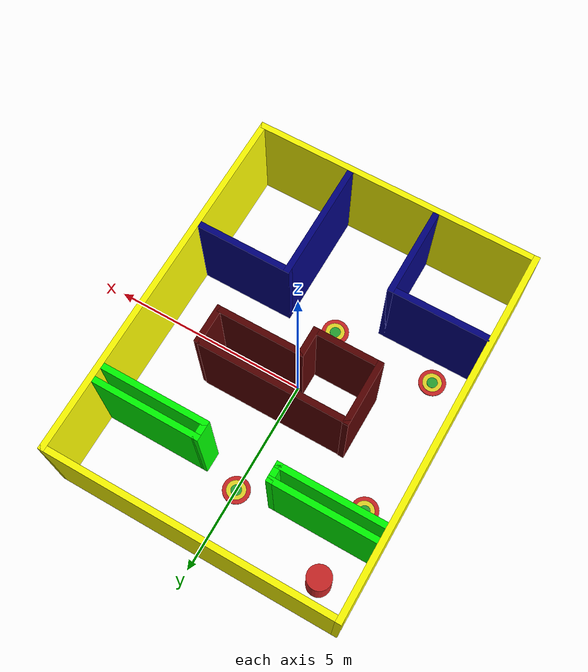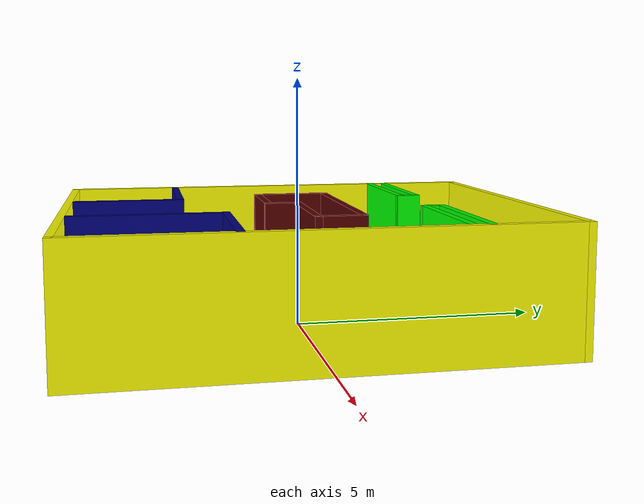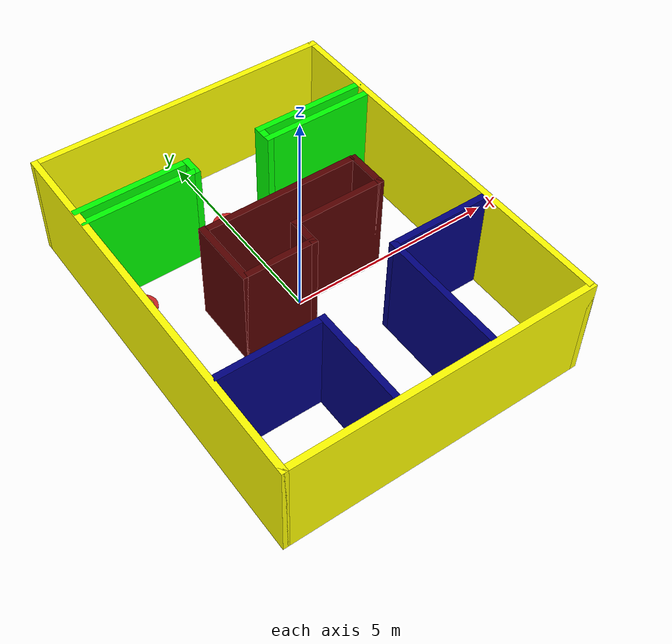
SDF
<?xml version='1.0'?>
<sdf version='1.6'>
  <model name='ColorfulRoom'>
    <link name='Wall_0'>
      <pose frame=''>-3.55 0 0 0 0 -1.5708</pose>
      <self_collide>0</self_collide>
      <enable_wind>0</enable_wind>
      <kinematic>0</kinematic>
      <visual name='Wall_0_Visual'>
        <pose frame=''>0 0 1.25 0 -0 0</pose>
        <geometry>
          <box>
            <size>9.25 0.15 2.5</size>
          </box>
        </geometry>
        <material>
          <script>
            <uri>file://media/materials/scripts/gazebo.material</uri>
            <name>Gazebo/Grey</name>
          </script>
          <ambient>1 1 0 1</ambient>
        </material>
        <meta>
          <layer>0</layer>
        </meta>
        <transparency>0</transparency>
        <cast_shadows>1</cast_shadows>
      </visual>
      <collision name='Wall_0_Collision'>
        <laser_retro>0</laser_retro>
        <max_contacts>10</max_contacts>
        <pose frame=''>0 0 1.25 0 -0 0</pose>
        <geometry>
          <box>
            <size>9.25 0.15 2.5</size>
          </box>
        </geometry>
        <surface>
          <friction>
            <ode>
              <mu>1</mu>
              <mu2>1</mu2>
              <fdir1>0 0 0</fdir1>
              <slip1>0</slip1>
              <slip2>0</slip2>
            </ode>
            <torsional>
              <coefficient>1</coefficient>
              <patch_radius>0</patch_radius>
              <surface_radius>0</surface_radius>
              <use_patch_radius>1</use_patch_radius>
              <ode>
                <slip>0</slip>
              </ode>
            </torsional>
          </friction>
          <bounce>
            <restitution_coefficient>0</restitution_coefficient>
            <threshold>1e+06</threshold>
          </bounce>
          <contact>
            <collide_without_contact>0</collide_without_contact>
            <collide_without_contact_bitmask>1</collide_without_contact_bitmask>
            <collide_bitmask>1</collide_bitmask>
            <ode>
              <soft_cfm>0</soft_cfm>
              <soft_erp>0.2</soft_erp>
              <kp>1e+13</kp>
              <kd>1</kd>
              <max_vel>0.01</max_vel>
              <min_depth>0</min_depth>
            </ode>
            <bullet>
              <split_impulse>1</split_impulse>
              <split_impulse_penetration_threshold>-0.01</split_impulse_penetration_threshold>
              <soft_cfm>0</soft_cfm>
              <soft_erp>0.2</soft_erp>
              <kp>1e+13</kp>
              <kd>1</kd>
            </bullet>
          </contact>
        </surface>
      </collision>
    </link>
    <link name='Wall_11'>
      <pose frame=''>2.33537 -1.55762 0 0 -0 3.14159</pose>
      <self_collide>0</self_collide>
      <enable_wind>0</enable_wind>
      <kinematic>0</kinematic>
      <visual name='Wall_11_Visual'>
        <pose frame=''>0 0 1.25 0 -0 0</pose>
        <geometry>
          <box>
            <size>2.5 0.15 2.5</size>
          </box>
        </geometry>
        <material>
          <script>
            <uri>file://media/materials/scripts/gazebo.material</uri>
            <name>Gazebo/Grey</name>
          </script>
          <ambient>0 0 0.498039 1</ambient>
        </material>
        <meta>
          <layer>0</layer>
        </meta>
        <transparency>0</transparency>
        <cast_shadows>1</cast_shadows>
      </visual>
      <collision name='Wall_11_Collision'>
        <laser_retro>0</laser_retro>
        <max_contacts>10</max_contacts>
        <pose frame=''>0 0 1.25 0 -0 0</pose>
        <geometry>
          <box>
            <size>2.5 0.15 2.5</size>
          </box>
        </geometry>
        <surface>
          <friction>
            <ode>
              <mu>1</mu>
              <mu2>1</mu2>
              <fdir1>0 0 0</fdir1>
              <slip1>0</slip1>
              <slip2>0</slip2>
            </ode>
            <torsional>
              <coefficient>1</coefficient>
              <patch_radius>0</patch_radius>
              <surface_radius>0</surface_radius>
              <use_patch_radius>1</use_patch_radius>
              <ode>
                <slip>0</slip>
              </ode>
            </torsional>
          </friction>
          <bounce>
            <restitution_coefficient>0</restitution_coefficient>
            <threshold>1e+06</threshold>
          </bounce>
          <contact>
            <collide_without_contact>0</collide_without_contact>
            <collide_without_contact_bitmask>1</collide_without_contact_bitmask>
            <collide_bitmask>1</collide_bitmask>
            <ode>
              <soft_cfm>0</soft_cfm>
              <soft_erp>0.2</soft_erp>
              <kp>1e+13</kp>
              <kd>1</kd>
              <max_vel>0.01</max_vel>
              <min_depth>0</min_depth>
            </ode>
            <bullet>
              <split_impulse>1</split_impulse>
              <split_impulse_penetration_threshold>-0.01</split_impulse_penetration_threshold>
              <soft_cfm>0</soft_cfm>
              <soft_erp>0.2</soft_erp>
              <kp>1e+13</kp>
              <kd>1</kd>
            </bullet>
          </contact>
        </surface>
      </collision>
    </link>
    <link name='Wall_12'>
      <pose frame=''>1.16037 -2.98392 0 0 0 -1.5708</pose>
      <self_collide>0</self_collide>
      <enable_wind>0</enable_wind>
      <kinematic>0</kinematic>
      <visual name='Wall_12_Visual'>
        <pose frame=''>0 0 1.25 0 -0 0</pose>
        <geometry>
          <box>
            <size>3.0026 0.15 2.5</size>
          </box>
        </geometry>
        <material>
          <script>
            <uri>file://media/materials/scripts/gazebo.material</uri>
            <name>Gazebo/Grey</name>
          </script>
          <ambient>0 0 0.498039 1</ambient>
        </material>
        <meta>
          <layer>0</layer>
        </meta>
        <transparency>0</transparency>
        <cast_shadows>1</cast_shadows>
      </visual>
      <collision name='Wall_12_Collision'>
        <laser_retro>0</laser_retro>
        <max_contacts>10</max_contacts>
        <pose frame=''>0 0 1.25 0 -0 0</pose>
        <geometry>
          <box>
            <size>3.0026 0.15 2.5</size>
          </box>
        </geometry>
        <surface>
          <friction>
            <ode>
              <mu>1</mu>
              <mu2>1</mu2>
              <fdir1>0 0 0</fdir1>
              <slip1>0</slip1>
              <slip2>0</slip2>
            </ode>
            <torsional>
              <coefficient>1</coefficient>
              <patch_radius>0</patch_radius>
              <surface_radius>0</surface_radius>
              <use_patch_radius>1</use_patch_radius>
              <ode>
                <slip>0</slip>
              </ode>
            </torsional>
          </friction>
          <bounce>
            <restitution_coefficient>0</restitution_coefficient>
            <threshold>1e+06</threshold>
          </bounce>
          <contact>
            <collide_without_contact>0</collide_without_contact>
            <collide_without_contact_bitmask>1</collide_without_contact_bitmask>
            <collide_bitmask>1</collide_bitmask>
            <ode>
              <soft_cfm>0</soft_cfm>
              <soft_erp>0.2</soft_erp>
              <kp>1e+13</kp>
              <kd>1</kd>
              <max_vel>0.01</max_vel>
              <min_depth>0</min_depth>
            </ode>
            <bullet>
              <split_impulse>1</split_impulse>
              <split_impulse_penetration_threshold>-0.01</split_impulse_penetration_threshold>
              <soft_cfm>0</soft_cfm>
              <soft_erp>0.2</soft_erp>
              <kp>1e+13</kp>
              <kd>1</kd>
            </bullet>
          </contact>
        </surface>
      </collision>
    </link>
    <link name='Wall_14'>
      <pose frame=''>-1.69948 0.162196 0 0 0 -1.5708</pose>
      <self_collide>0</self_collide>
      <enable_wind>0</enable_wind>
      <kinematic>0</kinematic>
      <gravity>1</gravity>
      <inertial>
        <mass>1</mass>
        <pose frame=''>0 0 0 0 -0 0</pose>
        <inertia>
          <ixx>1</ixx>
          <ixy>0</ixy>
          <ixz>0</ixz>
          <iyy>1</iyy>
          <iyz>0</iyz>
          <izz>1</izz>
        </inertia>
      </inertial>
      <visual name='Wall_14_Visual'>
        <pose frame=''>0 0 1.25 0 -0 0</pose>
        <geometry>
          <box>
            <size>1.63225 0.15 2.5</size>
          </box>
        </geometry>
        <material>
          <script>
            <uri>file://media/materials/scripts/gazebo.material</uri>
            <name>Gazebo/Grey</name>
          </script>
          <ambient>0.333 0 0 1</ambient>
          <shader type='vertex'>
            <normal_map>__default__</normal_map>
          </shader>
        </material>
        <meta>
          <layer>0</layer>
        </meta>
        <transparency>0</transparency>
        <cast_shadows>1</cast_shadows>
      </visual>
      <collision name='Wall_14_Collision'>
        <laser_retro>0</laser_retro>
        <max_contacts>10</max_contacts>
        <pose frame=''>0 0 1.25 0 -0 0</pose>
        <geometry>
          <box>
            <size>1.63225 0.15 2.5</size>
          </box>
        </geometry>
        <surface>
          <friction>
            <ode>
              <mu>1</mu>
              <mu2>1</mu2>
              <fdir1>0 0 0</fdir1>
              <slip1>0</slip1>
              <slip2>0</slip2>
            </ode>
            <torsional>
              <coefficient>1</coefficient>
              <patch_radius>0</patch_radius>
              <surface_radius>0</surface_radius>
              <use_patch_radius>1</use_patch_radius>
              <ode>
                <slip>0</slip>
              </ode>
            </torsional>
          </friction>
          <bounce>
            <restitution_coefficient>0</restitution_coefficient>
            <threshold>1e+06</threshold>
          </bounce>
          <contact>
            <collide_without_contact>0</collide_without_contact>
            <collide_without_contact_bitmask>1</collide_without_contact_bitmask>
            <collide_bitmask>1</collide_bitmask>
            <ode>
              <soft_cfm>0</soft_cfm>
              <soft_erp>0.2</soft_erp>
              <kp>1e+13</kp>
              <kd>1</kd>
              <max_vel>0.01</max_vel>
              <min_depth>0</min_depth>
            </ode>
            <bullet>
              <split_impulse>1</split_impulse>
              <split_impulse_penetration_threshold>-0.01</split_impulse_penetration_threshold>
              <soft_cfm>0</soft_cfm>
              <soft_erp>0.2</soft_erp>
              <kp>1e+13</kp>
              <kd>1</kd>
            </bullet>
          </contact>
        </surface>
      </collision>
    </link>
    <link name='Wall_17'>
      <pose frame=''>-0.899476 -0.578929 0 0 -0 0</pose>
      <self_collide>0</self_collide>
      <enable_wind>0</enable_wind>
      <kinematic>0</kinematic>
      <gravity>1</gravity>
      <inertial>
        <mass>1</mass>
        <pose frame=''>0 0 0 0 -0 0</pose>
        <inertia>
          <ixx>1</ixx>
          <ixy>0</ixy>
          <ixz>0</ixz>
          <iyy>1</iyy>
          <iyz>0</iyz>
          <izz>1</izz>
        </inertia>
      </inertial>
      <visual name='Wall_17_Visual'>
        <pose frame=''>0 0 1.25 0 -0 0</pose>
        <geometry>
          <box>
            <size>1.75 0.15 2.5</size>
          </box>
        </geometry>
        <material>
          <script>
            <uri>file://media/materials/scripts/gazebo.material</uri>
            <name>Gazebo/Grey</name>
          </script>
          <ambient>0.333 0 0 1</ambient>
          <shader type='vertex'>
            <normal_map>__default__</normal_map>
          </shader>
          <diffuse>0.7 0.7 0.7 1</diffuse>
          <specular>0.01 0.01 0.01 1</specular>
          <emissive>0 0 0 1</emissive>
        </material>
        <meta>
          <layer>0</layer>
        </meta>
        <transparency>0</transparency>
        <cast_shadows>1</cast_shadows>
      </visual>
      <collision name='Wall_17_Collision'>
        <laser_retro>0</laser_retro>
        <max_contacts>10</max_contacts>
        <pose frame=''>0 0 1.25 0 -0 0</pose>
        <geometry>
          <box>
            <size>1.75 0.15 2.5</size>
          </box>
        </geometry>
        <surface>
          <friction>
            <ode>
              <mu>1</mu>
              <mu2>1</mu2>
              <fdir1>0 0 0</fdir1>
              <slip1>0</slip1>
              <slip2>0</slip2>
            </ode>
            <torsional>
              <coefficient>1</coefficient>
              <patch_radius>0</patch_radius>
              <surface_radius>0</surface_radius>
              <use_patch_radius>1</use_patch_radius>
              <ode>
                <slip>0</slip>
              </ode>
            </torsional>
          </friction>
          <bounce>
            <restitution_coefficient>0</restitution_coefficient>
            <threshold>1e+06</threshold>
          </bounce>
          <contact>
            <collide_without_contact>0</collide_without_contact>
            <collide_without_contact_bitmask>1</collide_without_contact_bitmask>
            <collide_bitmask>1</collide_bitmask>
            <ode>
              <soft_cfm>0</soft_cfm>
              <soft_erp>0.2</soft_erp>
              <kp>1e+13</kp>
              <kd>1</kd>
              <max_vel>0.01</max_vel>
              <min_depth>0</min_depth>
            </ode>
            <bullet>
              <split_impulse>1</split_impulse>
              <split_impulse_penetration_threshold>-0.01</split_impulse_penetration_threshold>
              <soft_cfm>0</soft_cfm>
              <soft_erp>0.2</soft_erp>
              <kp>1e+13</kp>
              <kd>1</kd>
            </bullet>
          </contact>
        </surface>
      </collision>
    </link>
    <link name='Wall_18'>
      <pose frame=''>-0.099476 -0.278929 0 0 -0 1.5708</pose>
      <self_collide>0</self_collide>
      <enable_wind>0</enable_wind>
      <kinematic>0</kinematic>
      <gravity>1</gravity>
      <inertial>
        <mass>1</mass>
        <pose frame=''>0 0 0 0 -0 0</pose>
        <inertia>
          <ixx>1</ixx>
          <ixy>0</ixy>
          <ixz>0</ixz>
          <iyy>1</iyy>
          <iyz>0</iyz>
          <izz>1</izz>
        </inertia>
      </inertial>
      <visual name='Wall_18_Visual'>
        <pose frame=''>0 0 1.25 0 -0 0</pose>
        <geometry>
          <box>
            <size>0.75 0.15 2.5</size>
          </box>
        </geometry>
        <material>
          <script>
            <uri>file://media/materials/scripts/gazebo.material</uri>
            <name>Gazebo/Grey</name>
          </script>
          <ambient>0.333 0 0 1</ambient>
          <shader type='vertex'>
            <normal_map>__default__</normal_map>
          </shader>
          <diffuse>0.7 0.7 0.7 1</diffuse>
          <specular>0.01 0.01 0.01 1</specular>
          <emissive>0 0 0 1</emissive>
        </material>
        <meta>
          <layer>0</layer>
        </meta>
        <transparency>0</transparency>
        <cast_shadows>1</cast_shadows>
      </visual>
      <collision name='Wall_18_Collision'>
        <laser_retro>0</laser_retro>
        <max_contacts>10</max_contacts>
        <pose frame=''>0 0 1.25 0 -0 0</pose>
        <geometry>
          <box>
            <size>0.75 0.15 2.5</size>
          </box>
        </geometry>
        <surface>
          <friction>
            <ode>
              <mu>1</mu>
              <mu2>1</mu2>
              <fdir1>0 0 0</fdir1>
              <slip1>0</slip1>
              <slip2>0</slip2>
            </ode>
            <torsional>
              <coefficient>1</coefficient>
              <patch_radius>0</patch_radius>
              <surface_radius>0</surface_radius>
              <use_patch_radius>1</use_patch_radius>
              <ode>
                <slip>0</slip>
              </ode>
            </torsional>
          </friction>
          <bounce>
            <restitution_coefficient>0</restitution_coefficient>
            <threshold>1e+06</threshold>
          </bounce>
          <contact>
            <collide_without_contact>0</collide_without_contact>
            <collide_without_contact_bitmask>1</collide_without_contact_bitmask>
            <collide_bitmask>1</collide_bitmask>
            <ode>
              <soft_cfm>0</soft_cfm>
              <soft_erp>0.2</soft_erp>
              <kp>1e+13</kp>
              <kd>1</kd>
              <max_vel>0.01</max_vel>
              <min_depth>0</min_depth>
            </ode>
            <bullet>
              <split_impulse>1</split_impulse>
              <split_impulse_penetration_threshold>-0.01</split_impulse_penetration_threshold>
              <soft_cfm>0</soft_cfm>
              <soft_erp>0.2</soft_erp>
              <kp>1e+13</kp>
              <kd>1</kd>
            </bullet>
          </contact>
        </surface>
      </collision>
    </link>
    <link name='Wall_19'>
      <pose frame=''>0.950524 0.02107 0 0 -0 0</pose>
      <self_collide>0</self_collide>
      <enable_wind>0</enable_wind>
      <kinematic>0</kinematic>
      <gravity>1</gravity>
      <inertial>
        <mass>1</mass>
        <pose frame=''>0 0 0 0 -0 0</pose>
        <inertia>
          <ixx>1</ixx>
          <ixy>0</ixy>
          <ixz>0</ixz>
          <iyy>1</iyy>
          <iyz>0</iyz>
          <izz>1</izz>
        </inertia>
      </inertial>
      <visual name='Wall_19_Visual'>
        <pose frame=''>0 0 1.25 0 -0 0</pose>
        <geometry>
          <box>
            <size>2.25 0.15 2.5</size>
          </box>
        </geometry>
        <material>
          <script>
            <uri>file://media/materials/scripts/gazebo.material</uri>
            <name>Gazebo/Grey</name>
          </script>
          <ambient>0.333 0 0 1</ambient>
          <shader type='vertex'>
            <normal_map>__default__</normal_map>
          </shader>
        </material>
        <meta>
          <layer>0</layer>
        </meta>
        <transparency>0</transparency>
        <cast_shadows>1</cast_shadows>
      </visual>
      <collision name='Wall_19_Collision'>
        <laser_retro>0</laser_retro>
        <max_contacts>10</max_contacts>
        <pose frame=''>0 0 1.25 0 -0 0</pose>
        <geometry>
          <box>
            <size>2.25 0.15 2.5</size>
          </box>
        </geometry>
        <surface>
          <friction>
            <ode>
              <mu>1</mu>
              <mu2>1</mu2>
              <fdir1>0 0 0</fdir1>
              <slip1>0</slip1>
              <slip2>0</slip2>
            </ode>
            <torsional>
              <coefficient>1</coefficient>
              <patch_radius>0</patch_radius>
              <surface_radius>0</surface_radius>
              <use_patch_radius>1</use_patch_radius>
              <ode>
                <slip>0</slip>
              </ode>
            </torsional>
          </friction>
          <bounce>
            <restitution_coefficient>0</restitution_coefficient>
            <threshold>1e+06</threshold>
          </bounce>
          <contact>
            <collide_without_contact>0</collide_without_contact>
            <collide_without_contact_bitmask>1</collide_without_contact_bitmask>
            <collide_bitmask>1</collide_bitmask>
            <ode>
              <soft_cfm>0</soft_cfm>
              <soft_erp>0.2</soft_erp>
              <kp>1e+13</kp>
              <kd>1</kd>
              <max_vel>0.01</max_vel>
              <min_depth>0</min_depth>
            </ode>
            <bullet>
              <split_impulse>1</split_impulse>
              <split_impulse_penetration_threshold>-0.01</split_impulse_penetration_threshold>
              <soft_cfm>0</soft_cfm>
              <soft_erp>0.2</soft_erp>
              <kp>1e+13</kp>
              <kd>1</kd>
            </bullet>
          </contact>
        </surface>
      </collision>
    </link>
    <link name='Wall_2'>
      <pose frame=''>0 -4.55 0 0 -0 0</pose>
      <self_collide>0</self_collide>
      <enable_wind>0</enable_wind>
      <kinematic>0</kinematic>
      <visual name='Wall_2_Visual'>
        <pose frame=''>0 0 1.25 0 -0 0</pose>
        <geometry>
          <box>
            <size>7.25 0.15 2.5</size>
          </box>
        </geometry>
        <material>
          <script>
            <uri>file://media/materials/scripts/gazebo.material</uri>
            <name>Gazebo/Grey</name>
          </script>
          <ambient>1 1 0 1</ambient>
        </material>
        <meta>
          <layer>0</layer>
        </meta>
        <transparency>0</transparency>
        <cast_shadows>1</cast_shadows>
      </visual>
      <collision name='Wall_2_Collision'>
        <laser_retro>0</laser_retro>
        <max_contacts>10</max_contacts>
        <pose frame=''>0 0 1.25 0 -0 0</pose>
        <geometry>
          <box>
            <size>7.25 0.15 2.5</size>
          </box>
        </geometry>
        <surface>
          <friction>
            <ode>
              <mu>1</mu>
              <mu2>1</mu2>
              <fdir1>0 0 0</fdir1>
              <slip1>0</slip1>
              <slip2>0</slip2>
            </ode>
            <torsional>
              <coefficient>1</coefficient>
              <patch_radius>0</patch_radius>
              <surface_radius>0</surface_radius>
              <use_patch_radius>1</use_patch_radius>
              <ode>
                <slip>0</slip>
              </ode>
            </torsional>
          </friction>
          <bounce>
            <restitution_coefficient>0</restitution_coefficient>
            <threshold>1e+06</threshold>
          </bounce>
          <contact>
            <collide_without_contact>0</collide_without_contact>
            <collide_without_contact_bitmask>1</collide_without_contact_bitmask>
            <collide_bitmask>1</collide_bitmask>
            <ode>
              <soft_cfm>0</soft_cfm>
              <soft_erp>0.2</soft_erp>
              <kp>1e+13</kp>
              <kd>1</kd>
              <max_vel>0.01</max_vel>
              <min_depth>0</min_depth>
            </ode>
            <bullet>
              <split_impulse>1</split_impulse>
              <split_impulse_penetration_threshold>-0.01</split_impulse_penetration_threshold>
              <soft_cfm>0</soft_cfm>
              <soft_erp>0.2</soft_erp>
              <kp>1e+13</kp>
              <kd>1</kd>
            </bullet>
          </contact>
        </surface>
      </collision>
    </link>
    <link name='Wall_20'>
      <pose frame=''>2.00052 0.446071 0 0 -0 1.5708</pose>
      <self_collide>0</self_collide>
      <enable_wind>0</enable_wind>
      <kinematic>0</kinematic>
      <gravity>1</gravity>
      <inertial>
        <mass>1</mass>
        <pose frame=''>0 0 0 0 -0 0</pose>
        <inertia>
          <ixx>1</ixx>
          <ixy>0</ixy>
          <ixz>0</ixz>
          <iyy>1</iyy>
          <iyz>0</iyz>
          <izz>1</izz>
        </inertia>
      </inertial>
      <visual name='Wall_20_Visual'>
        <pose frame=''>0 0 1.25 0 -0 0</pose>
        <geometry>
          <box>
            <size>1 0.15 2.5</size>
          </box>
        </geometry>
        <material>
          <script>
            <uri>file://media/materials/scripts/gazebo.material</uri>
            <name>Gazebo/Grey</name>
          </script>
          <ambient>0.333 0 0 1</ambient>
          <shader type='vertex'>
            <normal_map>__default__</normal_map>
          </shader>
        </material>
        <meta>
          <layer>0</layer>
        </meta>
        <transparency>0</transparency>
        <cast_shadows>1</cast_shadows>
      </visual>
      <collision name='Wall_20_Collision'>
        <laser_retro>0</laser_retro>
        <max_contacts>10</max_contacts>
        <pose frame=''>0 0 1.25 0 -0 0</pose>
        <geometry>
          <box>
            <size>1 0.15 2.5</size>
          </box>
        </geometry>
        <surface>
          <friction>
            <ode>
              <mu>1</mu>
              <mu2>1</mu2>
              <fdir1>0 0 0</fdir1>
              <slip1>0</slip1>
              <slip2>0</slip2>
            </ode>
            <torsional>
              <coefficient>1</coefficient>
              <patch_radius>0</patch_radius>
              <surface_radius>0</surface_radius>
              <use_patch_radius>1</use_patch_radius>
              <ode>
                <slip>0</slip>
              </ode>
            </torsional>
          </friction>
          <bounce>
            <restitution_coefficient>0</restitution_coefficient>
            <threshold>1e+06</threshold>
          </bounce>
          <contact>
            <collide_without_contact>0</collide_without_contact>
            <collide_without_contact_bitmask>1</collide_without_contact_bitmask>
            <collide_bitmask>1</collide_bitmask>
            <ode>
              <soft_cfm>0</soft_cfm>
              <soft_erp>0.2</soft_erp>
              <kp>1e+13</kp>
              <kd>1</kd>
              <max_vel>0.01</max_vel>
              <min_depth>0</min_depth>
            </ode>
            <bullet>
              <split_impulse>1</split_impulse>
              <split_impulse_penetration_threshold>-0.01</split_impulse_penetration_threshold>
              <soft_cfm>0</soft_cfm>
              <soft_erp>0.2</soft_erp>
              <kp>1e+13</kp>
              <kd>1</kd>
            </bullet>
          </contact>
        </surface>
      </collision>
    </link>
    <link name='Wall_24'>
      <pose frame=''>0.100524 0.890096 0 0 -0 0</pose>
      <self_collide>0</self_collide>
      <enable_wind>0</enable_wind>
      <kinematic>0</kinematic>
      <gravity>1</gravity>
      <inertial>
        <mass>1</mass>
        <pose frame=''>0 0 0 0 -0 0</pose>
        <inertia>
          <ixx>1</ixx>
          <ixy>0</ixy>
          <ixz>0</ixz>
          <iyy>1</iyy>
          <iyz>0</iyz>
          <izz>1</izz>
        </inertia>
      </inertial>
      <visual name='Wall_24_Visual'>
        <pose frame=''>0 0 1.25 0 -0 0</pose>
        <geometry>
          <box>
            <size>3.75 0.15 2.5</size>
          </box>
        </geometry>
        <material>
          <script>
            <uri>file://media/materials/scripts/gazebo.material</uri>
            <name>Gazebo/Grey</name>
          </script>
          <ambient>0.333 0 0 1</ambient>
          <shader type='vertex'>
            <normal_map>__default__</normal_map>
          </shader>
        </material>
        <meta>
          <layer>0</layer>
        </meta>
        <transparency>0</transparency>
        <cast_shadows>1</cast_shadows>
      </visual>
      <collision name='Wall_24_Collision'>
        <laser_retro>0</laser_retro>
        <max_contacts>10</max_contacts>
        <pose frame=''>0 0 1.25 0 -0 0</pose>
        <geometry>
          <box>
            <size>3.75 0.15 2.5</size>
          </box>
        </geometry>
        <surface>
          <friction>
            <ode>
              <mu>1</mu>
              <mu2>1</mu2>
              <fdir1>0 0 0</fdir1>
              <slip1>0</slip1>
              <slip2>0</slip2>
            </ode>
            <torsional>
              <coefficient>1</coefficient>
              <patch_radius>0</patch_radius>
              <surface_radius>0</surface_radius>
              <use_patch_radius>1</use_patch_radius>
              <ode>
                <slip>0</slip>
              </ode>
            </torsional>
          </friction>
          <bounce>
            <restitution_coefficient>0</restitution_coefficient>
            <threshold>1e+06</threshold>
          </bounce>
          <contact>
            <collide_without_contact>0</collide_without_contact>
            <collide_without_contact_bitmask>1</collide_without_contact_bitmask>
            <collide_bitmask>1</collide_bitmask>
            <ode>
              <soft_cfm>0</soft_cfm>
              <soft_erp>0.2</soft_erp>
              <kp>1e+13</kp>
              <kd>1</kd>
              <max_vel>0.01</max_vel>
              <min_depth>0</min_depth>
            </ode>
            <bullet>
              <split_impulse>1</split_impulse>
              <split_impulse_penetration_threshold>-0.01</split_impulse_penetration_threshold>
              <soft_cfm>0</soft_cfm>
              <soft_erp>0.2</soft_erp>
              <kp>1e+13</kp>
              <kd>1</kd>
            </bullet>
          </contact>
        </surface>
      </collision>
    </link>
    <link name='Wall_28'>
      <pose frame=''>-2.22793 2.43638 0 0 -0 0</pose>
      <self_collide>0</self_collide>
      <enable_wind>0</enable_wind>
      <kinematic>0</kinematic>
      <visual name='Wall_28_Visual'>
        <pose frame=''>0 0 1.25 0 -0 0</pose>
        <geometry>
          <box>
            <size>2.75 0.15 2.5</size>
          </box>
        </geometry>
        <material>
          <script>
            <uri>file://media/materials/scripts/gazebo.material</uri>
            <name>Gazebo/Grey</name>
          </script>
          <ambient>0 1 0 1</ambient>
        </material>
        <meta>
          <layer>0</layer>
        </meta>
        <transparency>0</transparency>
        <cast_shadows>1</cast_shadows>
      </visual>
      <collision name='Wall_28_Collision'>
        <laser_retro>0</laser_retro>
        <max_contacts>10</max_contacts>
        <pose frame=''>0 0 1.25 0 -0 0</pose>
        <geometry>
          <box>
            <size>2.75 0.15 2.5</size>
          </box>
        </geometry>
        <surface>
          <friction>
            <ode>
              <mu>1</mu>
              <mu2>1</mu2>
              <fdir1>0 0 0</fdir1>
              <slip1>0</slip1>
              <slip2>0</slip2>
            </ode>
            <torsional>
              <coefficient>1</coefficient>
              <patch_radius>0</patch_radius>
              <surface_radius>0</surface_radius>
              <use_patch_radius>1</use_patch_radius>
              <ode>
                <slip>0</slip>
              </ode>
            </torsional>
          </friction>
          <bounce>
            <restitution_coefficient>0</restitution_coefficient>
            <threshold>1e+06</threshold>
          </bounce>
          <contact>
            <collide_without_contact>0</collide_without_contact>
            <collide_without_contact_bitmask>1</collide_without_contact_bitmask>
            <collide_bitmask>1</collide_bitmask>
            <ode>
              <soft_cfm>0</soft_cfm>
              <soft_erp>0.2</soft_erp>
              <kp>1e+13</kp>
              <kd>1</kd>
              <max_vel>0.01</max_vel>
              <min_depth>0</min_depth>
            </ode>
            <bullet>
              <split_impulse>1</split_impulse>
              <split_impulse_penetration_threshold>-0.01</split_impulse_penetration_threshold>
              <soft_cfm>0</soft_cfm>
              <soft_erp>0.2</soft_erp>
              <kp>1e+13</kp>
              <kd>1</kd>
            </bullet>
          </contact>
        </surface>
      </collision>
    </link>
    <link name='Wall_29'>
      <pose frame=''>-0.927927 2.61138 0 0 -0 1.5708</pose>
      <self_collide>0</self_collide>
      <enable_wind>0</enable_wind>
      <kinematic>0</kinematic>
      <visual name='Wall_29_Visual'>
        <pose frame=''>0 0 1.25 0 -0 0</pose>
        <geometry>
          <box>
            <size>0.5 0.15 2.5</size>
          </box>
        </geometry>
        <material>
          <script>
            <uri>file://media/materials/scripts/gazebo.material</uri>
            <name>Gazebo/Grey</name>
          </script>
          <ambient>0 1 0 1</ambient>
        </material>
        <meta>
          <layer>0</layer>
        </meta>
        <transparency>0</transparency>
        <cast_shadows>1</cast_shadows>
      </visual>
      <collision name='Wall_29_Collision'>
        <laser_retro>0</laser_retro>
        <max_contacts>10</max_contacts>
        <pose frame=''>0 0 1.25 0 -0 0</pose>
        <geometry>
          <box>
            <size>0.5 0.15 2.5</size>
          </box>
        </geometry>
        <surface>
          <friction>
            <ode>
              <mu>1</mu>
              <mu2>1</mu2>
              <fdir1>0 0 0</fdir1>
              <slip1>0</slip1>
              <slip2>0</slip2>
            </ode>
            <torsional>
              <coefficient>1</coefficient>
              <patch_radius>0</patch_radius>
              <surface_radius>0</surface_radius>
              <use_patch_radius>1</use_patch_radius>
              <ode>
                <slip>0</slip>
              </ode>
            </torsional>
          </friction>
          <bounce>
            <restitution_coefficient>0</restitution_coefficient>
            <threshold>1e+06</threshold>
          </bounce>
          <contact>
            <collide_without_contact>0</collide_without_contact>
            <collide_without_contact_bitmask>1</collide_without_contact_bitmask>
            <collide_bitmask>1</collide_bitmask>
            <ode>
              <soft_cfm>0</soft_cfm>
              <soft_erp>0.2</soft_erp>
              <kp>1e+13</kp>
              <kd>1</kd>
              <max_vel>0.01</max_vel>
              <min_depth>0</min_depth>
            </ode>
            <bullet>
              <split_impulse>1</split_impulse>
              <split_impulse_penetration_threshold>-0.01</split_impulse_penetration_threshold>
              <soft_cfm>0</soft_cfm>
              <soft_erp>0.2</soft_erp>
              <kp>1e+13</kp>
              <kd>1</kd>
            </bullet>
          </contact>
        </surface>
      </collision>
    </link>
    <link name='Wall_30'>
      <pose frame=''>-2.22793 2.78638 0 0 -0 3.14159</pose>
      <self_collide>0</self_collide>
      <enable_wind>0</enable_wind>
      <kinematic>0</kinematic>
      <visual name='Wall_30_Visual'>
        <pose frame=''>0 0 1.25 0 -0 0</pose>
        <geometry>
          <box>
            <size>2.75 0.15 2.5</size>
          </box>
        </geometry>
        <material>
          <script>
            <uri>file://media/materials/scripts/gazebo.material</uri>
            <name>Gazebo/Grey</name>
          </script>
          <ambient>0 1 0 1</ambient>
        </material>
        <meta>
          <layer>0</layer>
        </meta>
        <transparency>0</transparency>
        <cast_shadows>1</cast_shadows>
      </visual>
      <collision name='Wall_30_Collision'>
        <laser_retro>0</laser_retro>
        <max_contacts>10</max_contacts>
        <pose frame=''>0 0 1.25 0 -0 0</pose>
        <geometry>
          <box>
            <size>2.75 0.15 2.5</size>
          </box>
        </geometry>
        <surface>
          <friction>
            <ode>
              <mu>1</mu>
              <mu2>1</mu2>
              <fdir1>0 0 0</fdir1>
              <slip1>0</slip1>
              <slip2>0</slip2>
            </ode>
            <torsional>
              <coefficient>1</coefficient>
              <patch_radius>0</patch_radius>
              <surface_radius>0</surface_radius>
              <use_patch_radius>1</use_patch_radius>
              <ode>
                <slip>0</slip>
              </ode>
            </torsional>
          </friction>
          <bounce>
            <restitution_coefficient>0</restitution_coefficient>
            <threshold>1e+06</threshold>
          </bounce>
          <contact>
            <collide_without_contact>0</collide_without_contact>
            <collide_without_contact_bitmask>1</collide_without_contact_bitmask>
            <collide_bitmask>1</collide_bitmask>
            <ode>
              <soft_cfm>0</soft_cfm>
              <soft_erp>0.2</soft_erp>
              <kp>1e+13</kp>
              <kd>1</kd>
              <max_vel>0.01</max_vel>
              <min_depth>0</min_depth>
            </ode>
            <bullet>
              <split_impulse>1</split_impulse>
              <split_impulse_penetration_threshold>-0.01</split_impulse_penetration_threshold>
              <soft_cfm>0</soft_cfm>
              <soft_erp>0.2</soft_erp>
              <kp>1e+13</kp>
              <kd>1</kd>
            </bullet>
          </contact>
        </surface>
      </collision>
    </link>
    <link name='Wall_32'>
      <pose frame=''>2.18065 2.41325 0 0 -0 3.14159</pose>
      <self_collide>0</self_collide>
      <enable_wind>0</enable_wind>
      <kinematic>0</kinematic>
      <visual name='Wall_32_Visual'>
        <pose frame=''>0 0 1.25 0 -0 0</pose>
        <geometry>
          <box>
            <size>2.75 0.15 2.5</size>
          </box>
        </geometry>
        <material>
          <script>
            <uri>file://media/materials/scripts/gazebo.material</uri>
            <name>Gazebo/Grey</name>
          </script>
          <ambient>0 1 0 1</ambient>
        </material>
        <meta>
          <layer>0</layer>
        </meta>
        <transparency>0</transparency>
        <cast_shadows>1</cast_shadows>
      </visual>
      <collision name='Wall_32_Collision'>
        <laser_retro>0</laser_retro>
        <max_contacts>10</max_contacts>
        <pose frame=''>0 0 1.25 0 -0 0</pose>
        <geometry>
          <box>
            <size>2.75 0.15 2.5</size>
          </box>
        </geometry>
        <surface>
          <friction>
            <ode>
              <mu>1</mu>
              <mu2>1</mu2>
              <fdir1>0 0 0</fdir1>
              <slip1>0</slip1>
              <slip2>0</slip2>
            </ode>
            <torsional>
              <coefficient>1</coefficient>
              <patch_radius>0</patch_radius>
              <surface_radius>0</surface_radius>
              <use_patch_radius>1</use_patch_radius>
              <ode>
                <slip>0</slip>
              </ode>
            </torsional>
          </friction>
          <bounce>
            <restitution_coefficient>0</restitution_coefficient>
            <threshold>1e+06</threshold>
          </bounce>
          <contact>
            <collide_without_contact>0</collide_without_contact>
            <collide_without_contact_bitmask>1</collide_without_contact_bitmask>
            <collide_bitmask>1</collide_bitmask>
            <ode>
              <soft_cfm>0</soft_cfm>
              <soft_erp>0.2</soft_erp>
              <kp>1e+13</kp>
              <kd>1</kd>
              <max_vel>0.01</max_vel>
              <min_depth>0</min_depth>
            </ode>
            <bullet>
              <split_impulse>1</split_impulse>
              <split_impulse_penetration_threshold>-0.01</split_impulse_penetration_threshold>
              <soft_cfm>0</soft_cfm>
              <soft_erp>0.2</soft_erp>
              <kp>1e+13</kp>
              <kd>1</kd>
            </bullet>
          </contact>
        </surface>
      </collision>
    </link>
    <link name='Wall_33'>
      <pose frame=''>0.880647 2.58825 0 0 -0 1.5708</pose>
      <self_collide>0</self_collide>
      <enable_wind>0</enable_wind>
      <kinematic>0</kinematic>
      <visual name='Wall_33_Visual'>
        <pose frame=''>0 0 1.25 0 -0 0</pose>
        <geometry>
          <box>
            <size>0.5 0.15 2.5</size>
          </box>
        </geometry>
        <material>
          <script>
            <uri>file://media/materials/scripts/gazebo.material</uri>
            <name>Gazebo/Grey</name>
          </script>
          <ambient>0 1 0 1</ambient>
        </material>
        <meta>
          <layer>0</layer>
        </meta>
        <transparency>0</transparency>
        <cast_shadows>1</cast_shadows>
      </visual>
      <collision name='Wall_33_Collision'>
        <laser_retro>0</laser_retro>
        <max_contacts>10</max_contacts>
        <pose frame=''>0 0 1.25 0 -0 0</pose>
        <geometry>
          <box>
            <size>0.5 0.15 2.5</size>
          </box>
        </geometry>
        <surface>
          <friction>
            <ode>
              <mu>1</mu>
              <mu2>1</mu2>
              <fdir1>0 0 0</fdir1>
              <slip1>0</slip1>
              <slip2>0</slip2>
            </ode>
            <torsional>
              <coefficient>1</coefficient>
              <patch_radius>0</patch_radius>
              <surface_radius>0</surface_radius>
              <use_patch_radius>1</use_patch_radius>
              <ode>
                <slip>0</slip>
              </ode>
            </torsional>
          </friction>
          <bounce>
            <restitution_coefficient>0</restitution_coefficient>
            <threshold>1e+06</threshold>
          </bounce>
          <contact>
            <collide_without_contact>0</collide_without_contact>
            <collide_without_contact_bitmask>1</collide_without_contact_bitmask>
            <collide_bitmask>1</collide_bitmask>
            <ode>
              <soft_cfm>0</soft_cfm>
              <soft_erp>0.2</soft_erp>
              <kp>1e+13</kp>
              <kd>1</kd>
              <max_vel>0.01</max_vel>
              <min_depth>0</min_depth>
            </ode>
            <bullet>
              <split_impulse>1</split_impulse>
              <split_impulse_penetration_threshold>-0.01</split_impulse_penetration_threshold>
              <soft_cfm>0</soft_cfm>
              <soft_erp>0.2</soft_erp>
              <kp>1e+13</kp>
              <kd>1</kd>
            </bullet>
          </contact>
        </surface>
      </collision>
    </link>
    <link name='Wall_34'>
      <pose frame=''>2.18065 2.76325 0 0 -0 0</pose>
      <self_collide>0</self_collide>
      <enable_wind>0</enable_wind>
      <kinematic>0</kinematic>
      <visual name='Wall_34_Visual'>
        <pose frame=''>0 0 1.25 0 -0 0</pose>
        <geometry>
          <box>
            <size>2.75 0.15 2.5</size>
          </box>
        </geometry>
        <material>
          <script>
            <uri>file://media/materials/scripts/gazebo.material</uri>
            <name>Gazebo/Grey</name>
          </script>
          <ambient>0 1 0 1</ambient>
        </material>
        <meta>
          <layer>0</layer>
        </meta>
        <transparency>0</transparency>
        <cast_shadows>1</cast_shadows>
      </visual>
      <collision name='Wall_34_Collision'>
        <laser_retro>0</laser_retro>
        <max_contacts>10</max_contacts>
        <pose frame=''>0 0 1.25 0 -0 0</pose>
        <geometry>
          <box>
            <size>2.75 0.15 2.5</size>
          </box>
        </geometry>
        <surface>
          <friction>
            <ode>
              <mu>1</mu>
              <mu2>1</mu2>
              <fdir1>0 0 0</fdir1>
              <slip1>0</slip1>
              <slip2>0</slip2>
            </ode>
            <torsional>
              <coefficient>1</coefficient>
              <patch_radius>0</patch_radius>
              <surface_radius>0</surface_radius>
              <use_patch_radius>1</use_patch_radius>
              <ode>
                <slip>0</slip>
              </ode>
            </torsional>
          </friction>
          <bounce>
            <restitution_coefficient>0</restitution_coefficient>
            <threshold>1e+06</threshold>
          </bounce>
          <contact>
            <collide_without_contact>0</collide_without_contact>
            <collide_without_contact_bitmask>1</collide_without_contact_bitmask>
            <collide_bitmask>1</collide_bitmask>
            <ode>
              <soft_cfm>0</soft_cfm>
              <soft_erp>0.2</soft_erp>
              <kp>1e+13</kp>
              <kd>1</kd>
              <max_vel>0.01</max_vel>
              <min_depth>0</min_depth>
            </ode>
            <bullet>
              <split_impulse>1</split_impulse>
              <split_impulse_penetration_threshold>-0.01</split_impulse_penetration_threshold>
              <soft_cfm>0</soft_cfm>
              <soft_erp>0.2</soft_erp>
              <kp>1e+13</kp>
              <kd>1</kd>
            </bullet>
          </contact>
        </surface>
      </collision>
    </link>
    <link name='Wall_4'>
      <pose frame=''>3.55 0 0 0 -0 1.5708</pose>
      <self_collide>0</self_collide>
      <enable_wind>0</enable_wind>
      <kinematic>0</kinematic>
      <visual name='Wall_4_Visual'>
        <pose frame=''>0 0 1.25 0 -0 0</pose>
        <geometry>
          <box>
            <size>9.25 0.15 2.5</size>
          </box>
        </geometry>
        <material>
          <script>
            <uri>file://media/materials/scripts/gazebo.material</uri>
            <name>Gazebo/Grey</name>
          </script>
          <ambient>1 1 0 1</ambient>
        </material>
        <meta>
          <layer>0</layer>
        </meta>
        <transparency>0</transparency>
        <cast_shadows>1</cast_shadows>
      </visual>
      <collision name='Wall_4_Collision'>
        <laser_retro>0</laser_retro>
        <max_contacts>10</max_contacts>
        <pose frame=''>0 0 1.25 0 -0 0</pose>
        <geometry>
          <box>
            <size>9.25 0.15 2.5</size>
          </box>
        </geometry>
        <surface>
          <friction>
            <ode>
              <mu>1</mu>
              <mu2>1</mu2>
              <fdir1>0 0 0</fdir1>
              <slip1>0</slip1>
              <slip2>0</slip2>
            </ode>
            <torsional>
              <coefficient>1</coefficient>
              <patch_radius>0</patch_radius>
              <surface_radius>0</surface_radius>
              <use_patch_radius>1</use_patch_radius>
              <ode>
                <slip>0</slip>
              </ode>
            </torsional>
          </friction>
          <bounce>
            <restitution_coefficient>0</restitution_coefficient>
            <threshold>1e+06</threshold>
          </bounce>
          <contact>
            <collide_without_contact>0</collide_without_contact>
            <collide_without_contact_bitmask>1</collide_without_contact_bitmask>
            <collide_bitmask>1</collide_bitmask>
            <ode>
              <soft_cfm>0</soft_cfm>
              <soft_erp>0.2</soft_erp>
              <kp>1e+13</kp>
              <kd>1</kd>
              <max_vel>0.01</max_vel>
              <min_depth>0</min_depth>
            </ode>
            <bullet>
              <split_impulse>1</split_impulse>
              <split_impulse_penetration_threshold>-0.01</split_impulse_penetration_threshold>
              <soft_cfm>0</soft_cfm>
              <soft_erp>0.2</soft_erp>
              <kp>1e+13</kp>
              <kd>1</kd>
            </bullet>
          </contact>
        </surface>
      </collision>
    </link>
    <link name='Wall_6'>
      <pose frame=''>0 4.55 0 0 -0 0</pose>
      <self_collide>0</self_collide>
      <enable_wind>0</enable_wind>
      <kinematic>0</kinematic>
      <visual name='Wall_6_Visual'>
        <pose frame=''>0 0 1.25 0 -0 0</pose>
        <geometry>
          <box>
            <size>7.25 0.15 2.5</size>
          </box>
        </geometry>
        <material>
          <script>
            <uri>file://media/materials/scripts/gazebo.material</uri>
            <name>Gazebo/Grey</name>
          </script>
          <ambient>1 1 0 1</ambient>
        </material>
        <meta>
          <layer>0</layer>
        </meta>
        <transparency>0</transparency>
        <cast_shadows>1</cast_shadows>
      </visual>
      <collision name='Wall_6_Collision'>
        <laser_retro>0</laser_retro>
        <max_contacts>10</max_contacts>
        <pose frame=''>0 0 1.25 0 -0 0</pose>
        <geometry>
          <box>
            <size>7.25 0.15 2.5</size>
          </box>
        </geometry>
        <surface>
          <friction>
            <ode>
              <mu>1</mu>
              <mu2>1</mu2>
              <fdir1>0 0 0</fdir1>
              <slip1>0</slip1>
              <slip2>0</slip2>
            </ode>
            <torsional>
              <coefficient>1</coefficient>
              <patch_radius>0</patch_radius>
              <surface_radius>0</surface_radius>
              <use_patch_radius>1</use_patch_radius>
              <ode>
                <slip>0</slip>
              </ode>
            </torsional>
          </friction>
          <bounce>
            <restitution_coefficient>0</restitution_coefficient>
            <threshold>1e+06</threshold>
          </bounce>
          <contact>
            <collide_without_contact>0</collide_without_contact>
            <collide_without_contact_bitmask>1</collide_without_contact_bitmask>
            <collide_bitmask>1</collide_bitmask>
            <ode>
              <soft_cfm>0</soft_cfm>
              <soft_erp>0.2</soft_erp>
              <kp>1e+13</kp>
              <kd>1</kd>
              <max_vel>0.01</max_vel>
              <min_depth>0</min_depth>
            </ode>
            <bullet>
              <split_impulse>1</split_impulse>
              <split_impulse_penetration_threshold>-0.01</split_impulse_penetration_threshold>
              <soft_cfm>0</soft_cfm>
              <soft_erp>0.2</soft_erp>
              <kp>1e+13</kp>
              <kd>1</kd>
            </bullet>
          </contact>
        </surface>
      </collision>
    </link>
    <link name='Wall_8'>
      <pose frame=''>-2.25299 -2.29433 0 0 -0 0</pose>
      <self_collide>0</self_collide>
      <enable_wind>0</enable_wind>
      <kinematic>0</kinematic>
      <visual name='Wall_8_Visual'>
        <pose frame=''>0 0 1.25 0 -0 0</pose>
        <geometry>
          <box>
            <size>2.5 0.15 2.5</size>
          </box>
        </geometry>
        <material>
          <script>
            <uri>file://media/materials/scripts/gazebo.material</uri>
            <name>Gazebo/Grey</name>
          </script>
          <ambient>0 0 0.498039 1</ambient>
        </material>
        <meta>
          <layer>0</layer>
        </meta>
        <transparency>0</transparency>
        <cast_shadows>1</cast_shadows>
      </visual>
      <collision name='Wall_8_Collision'>
        <laser_retro>0</laser_retro>
        <max_contacts>10</max_contacts>
        <pose frame=''>0 0 1.25 0 -0 0</pose>
        <geometry>
          <box>
            <size>2.5 0.15 2.5</size>
          </box>
        </geometry>
        <surface>
          <friction>
            <ode>
              <mu>1</mu>
              <mu2>1</mu2>
              <fdir1>0 0 0</fdir1>
              <slip1>0</slip1>
              <slip2>0</slip2>
            </ode>
            <torsional>
              <coefficient>1</coefficient>
              <patch_radius>0</patch_radius>
              <surface_radius>0</surface_radius>
              <use_patch_radius>1</use_patch_radius>
              <ode>
                <slip>0</slip>
              </ode>
            </torsional>
          </friction>
          <bounce>
            <restitution_coefficient>0</restitution_coefficient>
            <threshold>1e+06</threshold>
          </bounce>
          <contact>
            <collide_without_contact>0</collide_without_contact>
            <collide_without_contact_bitmask>1</collide_without_contact_bitmask>
            <collide_bitmask>1</collide_bitmask>
            <ode>
              <soft_cfm>0</soft_cfm>
              <soft_erp>0.2</soft_erp>
              <kp>1e+13</kp>
              <kd>1</kd>
              <max_vel>0.01</max_vel>
              <min_depth>0</min_depth>
            </ode>
            <bullet>
              <split_impulse>1</split_impulse>
              <split_impulse_penetration_threshold>-0.01</split_impulse_penetration_threshold>
              <soft_cfm>0</soft_cfm>
              <soft_erp>0.2</soft_erp>
              <kp>1e+13</kp>
              <kd>1</kd>
            </bullet>
          </contact>
        </surface>
      </collision>
    </link>
    <link name='Wall_9'>
      <pose frame=''>-1.07799 -3.34433 0 0 0 -1.5708</pose>
      <self_collide>0</self_collide>
      <enable_wind>0</enable_wind>
      <kinematic>0</kinematic>
      <visual name='Wall_9_Visual'>
        <pose frame=''>0 0 1.25 0 -0 0</pose>
        <geometry>
          <box>
            <size>2.25 0.15 2.5</size>
          </box>
        </geometry>
        <material>
          <script>
            <uri>file://media/materials/scripts/gazebo.material</uri>
            <name>Gazebo/Grey</name>
          </script>
          <ambient>0 0 0.498039 1</ambient>
        </material>
        <meta>
          <layer>0</layer>
        </meta>
        <transparency>0</transparency>
        <cast_shadows>1</cast_shadows>
      </visual>
      <collision name='Wall_9_Collision'>
        <laser_retro>0</laser_retro>
        <max_contacts>10</max_contacts>
        <pose frame=''>0 0 1.25 0 -0 0</pose>
        <geometry>
          <box>
            <size>2.25 0.15 2.5</size>
          </box>
        </geometry>
        <surface>
          <friction>
            <ode>
              <mu>1</mu>
              <mu2>1</mu2>
              <fdir1>0 0 0</fdir1>
              <slip1>0</slip1>
              <slip2>0</slip2>
            </ode>
            <torsional>
              <coefficient>1</coefficient>
              <patch_radius>0</patch_radius>
              <surface_radius>0</surface_radius>
              <use_patch_radius>1</use_patch_radius>
              <ode>
                <slip>0</slip>
              </ode>
            </torsional>
          </friction>
          <bounce>
            <restitution_coefficient>0</restitution_coefficient>
            <threshold>1e+06</threshold>
          </bounce>
          <contact>
            <collide_without_contact>0</collide_without_contact>
            <collide_without_contact_bitmask>1</collide_without_contact_bitmask>
            <collide_bitmask>1</collide_bitmask>
            <ode>
              <soft_cfm>0</soft_cfm>
              <soft_erp>0.2</soft_erp>
              <kp>1e+13</kp>
              <kd>1</kd>
              <max_vel>0.01</max_vel>
              <min_depth>0</min_depth>
            </ode>
            <bullet>
              <split_impulse>1</split_impulse>
              <split_impulse_penetration_threshold>-0.01</split_impulse_penetration_threshold>
              <soft_cfm>0</soft_cfm>
              <soft_erp>0.2</soft_erp>
              <kp>1e+13</kp>
              <kd>1</kd>
            </bullet>
          </contact>
        </surface>
      </collision>
    </link>
    <link name='link_0'>
      <inertial>
        <mass>0.347417</mass>
        <inertia>
          <ixx>0.0364952</ixx>
          <ixy>0</ixy>
          <ixz>0</ixz>
          <iyy>0.0364952</iyy>
          <iyz>0</iyz>
          <izz>0.0150877</izz>
        </inertia>
        <pose frame=''>0 0 0 0 -0 0</pose>
      </inertial>
      <pose frame=''>-2.70672 3.81294 0.5 0 -0 0</pose>
      <gravity>1</gravity>
      <self_collide>0</self_collide>
      <kinematic>0</kinematic>
      <enable_wind>0</enable_wind>
      <visual name='visual'>
        <pose frame=''>0 0 0 0 -0 0</pose>
        <geometry>
          <cylinder>
            <radius>0.294714</radius>
            <length>1</length>
          </cylinder>
        </geometry>
        <material>
          <lighting>1</lighting>
          <script>
            <uri>file://media/materials/scripts/gazebo.material</uri>
            <name>Gazebo/Red</name>
          </script>
          <shader type='vertex'>
            <normal_map>__default__</normal_map>
          </shader>
          <ambient>0.667 0 0 1</ambient>
          <diffuse>0.667 0 0 1</diffuse>
          <specular>0.667 0 0 1</specular>
          <emissive>0 0 0 1</emissive>
        </material>
        <transparency>0</transparency>
        <cast_shadows>1</cast_shadows>
      </visual>
      <collision name='collision'>
        <laser_retro>0</laser_retro>
        <max_contacts>10</max_contacts>
        <pose frame=''>0 0 0 0 -0 0</pose>
        <geometry>
          <cylinder>
            <radius>0.294714</radius>
            <length>1</length>
          </cylinder>
        </geometry>
        <surface>
          <friction>
            <ode>
              <mu>1</mu>
              <mu2>1</mu2>
              <fdir1>0 0 0</fdir1>
              <slip1>0</slip1>
              <slip2>0</slip2>
            </ode>
            <torsional>
              <coefficient>1</coefficient>
              <patch_radius>0</patch_radius>
              <surface_radius>0</surface_radius>
              <use_patch_radius>1</use_patch_radius>
              <ode>
                <slip>0</slip>
              </ode>
            </torsional>
          </friction>
          <bounce>
            <restitution_coefficient>0</restitution_coefficient>
            <threshold>1e+06</threshold>
          </bounce>
          <contact>
            <collide_without_contact>0</collide_without_contact>
            <collide_without_contact_bitmask>1</collide_without_contact_bitmask>
            <collide_bitmask>1</collide_bitmask>
            <ode>
              <soft_cfm>0</soft_cfm>
              <soft_erp>0.2</soft_erp>
              <kp>1e+13</kp>
              <kd>1</kd>
              <max_vel>0.01</max_vel>
              <min_depth>0</min_depth>
            </ode>
            <bullet>
              <split_impulse>1</split_impulse>
              <split_impulse_penetration_threshold>-0.01</split_impulse_penetration_threshold>
              <soft_cfm>0</soft_cfm>
              <soft_erp>0.2</soft_erp>
              <kp>1e+13</kp>
              <kd>1</kd>
            </bullet>
          </contact>
        </surface>
      </collision>
    </link>
    <model name='Hint'>
      <link name='green'>
        <pose frame=''>-0.428248 -0.314001 0 0 -0 0</pose>
        <self_collide>0</self_collide>
        <enable_wind>0</enable_wind>
        <kinematic>0</kinematic>
        <visual name='visual'>
          <geometry>
            <cylinder>
              <radius>0.130721</radius>
              <length>0.05</length>
            </cylinder>
          </geometry>
          <material>
            <script>
              <uri>file://media/materials/scripts/gazebo.material</uri>
              <name>Gazebo/Green</name>
            </script>
            <ambient>1 1 1 1</ambient>
          </material>
          <cast_shadows>0</cast_shadows>
          <transparency>0</transparency>
          <pose frame=''>0 0 0 0 -0 0</pose>
        </visual>
      </link>
      <link name='red'>
        <pose frame=''>-0.42837 -0.318402 0 0 -0 0</pose>
        <self_collide>0</self_collide>
        <enable_wind>0</enable_wind>
        <kinematic>0</kinematic>
        <visual name='visual'>
          <geometry>
            <cylinder>
              <radius>0.333835</radius>
              <length>0.03</length>
            </cylinder>
          </geometry>
          <material>
            <script>
              <uri>file://media/materials/scripts/gazebo.material</uri>
              <name>Gazebo/Red</name>
            </script>
            <ambient>1 1 1 1</ambient>
          </material>
          <cast_shadows>0</cast_shadows>
          <transparency>0</transparency>
          <pose frame=''>0 0 0 0 -0 0</pose>
        </visual>
      </link>
      <link name='yellow'>
        <pose frame=''>-0.423901 -0.318457 0 0 -0 0</pose>
        <self_collide>0</self_collide>
        <enable_wind>0</enable_wind>
        <kinematic>0</kinematic>
        <visual name='visual'>
          <geometry>
            <cylinder>
              <radius>0.235256</radius>
              <length>0.04</length>
            </cylinder>
          </geometry>
          <material>
            <script>
              <uri>file://media/materials/scripts/gazebo.material</uri>
              <name>Gazebo/Yellow</name>
            </script>
            <ambient>1 1 1 1</ambient>
          </material>
          <cast_shadows>0</cast_shadows>
          <transparency>0</transparency>
          <pose frame=''>0 0 0 0 -0 0</pose>
        </visual>
      </link>
      <static>1</static>
      <allow_auto_disable>1</allow_auto_disable>
      <pose frame=''>0.355434 -1.3945 0 0 -0 0</pose>
    </model>
    <model name='Hint_0'>
      <link name='green'>
        <pose frame=''>-0.428248 -0.314001 0 0 -0 0</pose>
        <self_collide>0</self_collide>
        <enable_wind>0</enable_wind>
        <kinematic>0</kinematic>
        <visual name='visual'>
          <geometry>
            <cylinder>
              <radius>0.130721</radius>
              <length>0.05</length>
            </cylinder>
          </geometry>
          <material>
            <script>
              <uri>file://media/materials/scripts/gazebo.material</uri>
              <name>Gazebo/Green</name>
            </script>
            <ambient>1 1 1 1</ambient>
          </material>
          <cast_shadows>0</cast_shadows>
          <transparency>0</transparency>
          <pose frame=''>0 0 0 0 -0 0</pose>
        </visual>
      </link>
      <link name='red'>
        <pose frame=''>-0.42837 -0.318402 0 0 -0 0</pose>
        <self_collide>0</self_collide>
        <enable_wind>0</enable_wind>
        <kinematic>0</kinematic>
        <visual name='visual'>
          <geometry>
            <cylinder>
              <radius>0.333835</radius>
              <length>0.03</length>
            </cylinder>
          </geometry>
          <material>
            <script>
              <uri>file://media/materials/scripts/gazebo.material</uri>
              <name>Gazebo/Red</name>
            </script>
            <ambient>1 1 1 1</ambient>
          </material>
          <cast_shadows>0</cast_shadows>
          <transparency>0</transparency>
          <pose frame=''>0 0 0 0 -0 0</pose>
        </visual>
      </link>
      <link name='yellow'>
        <pose frame=''>-0.423901 -0.318457 0 0 -0 0</pose>
        <self_collide>0</self_collide>
        <enable_wind>0</enable_wind>
        <kinematic>0</kinematic>
        <visual name='visual'>
          <geometry>
            <cylinder>
              <radius>0.235256</radius>
              <length>0.04</length>
            </cylinder>
          </geometry>
          <material>
            <script>
              <uri>file://media/materials/scripts/gazebo.material</uri>
              <name>Gazebo/Yellow</name>
            </script>
            <ambient>1 1 1 1</ambient>
          </material>
          <cast_shadows>0</cast_shadows>
          <transparency>0</transparency>
          <pose frame=''>0 0 0 0 -0 0</pose>
        </visual>
      </link>
      <static>1</static>
      <allow_auto_disable>1</allow_auto_disable>
      <pose frame=''>-2.30611 -1.40096 0 0 -0 0</pose>
    </model>
    <model name='Hint_1'>
      <link name='green'>
        <pose frame=''>-0.428248 -0.314001 0 0 -0 0</pose>
        <self_collide>0</self_collide>
        <enable_wind>0</enable_wind>
        <kinematic>0</kinematic>
        <visual name='visual'>
          <geometry>
            <cylinder>
              <radius>0.130721</radius>
              <length>0.05</length>
            </cylinder>
          </geometry>
          <material>
            <script>
              <uri>file://media/materials/scripts/gazebo.material</uri>
              <name>Gazebo/Green</name>
            </script>
            <ambient>1 1 1 1</ambient>
          </material>
          <cast_shadows>0</cast_shadows>
          <transparency>0</transparency>
          <pose frame=''>0 0 0 0 -0 0</pose>
        </visual>
      </link>
      <link name='red'>
        <pose frame=''>-0.42837 -0.318402 0 0 -0 0</pose>
        <self_collide>0</self_collide>
        <enable_wind>0</enable_wind>
        <kinematic>0</kinematic>
        <visual name='visual'>
          <geometry>
            <cylinder>
              <radius>0.333835</radius>
              <length>0.03</length>
            </cylinder>
          </geometry>
          <material>
            <script>
              <uri>file://media/materials/scripts/gazebo.material</uri>
              <name>Gazebo/Red</name>
            </script>
            <ambient>1 1 1 1</ambient>
          </material>
          <cast_shadows>0</cast_shadows>
          <transparency>0</transparency>
          <pose frame=''>0 0 0 0 -0 0</pose>
        </visual>
      </link>
      <link name='yellow'>
        <pose frame=''>-0.423901 -0.318457 0 0 -0 0</pose>
        <self_collide>0</self_collide>
        <enable_wind>0</enable_wind>
        <kinematic>0</kinematic>
        <visual name='visual'>
          <geometry>
            <cylinder>
              <radius>0.235256</radius>
              <length>0.04</length>
            </cylinder>
          </geometry>
          <material>
            <script>
              <uri>file://media/materials/scripts/gazebo.material</uri>
              <name>Gazebo/Yellow</name>
            </script>
            <ambient>1 1 1 1</ambient>
          </material>
          <cast_shadows>0</cast_shadows>
          <transparency>0</transparency>
          <pose frame=''>0 0 0 0 -0 0</pose>
        </visual>
      </link>
      <static>1</static>
      <allow_auto_disable>1</allow_auto_disable>
      <pose frame=''>-2.38549 2.15349 0 0 -0 0</pose>
    </model>
    <model name='Hint_2'>
      <link name='green'>
        <pose frame=''>-0.428248 -0.314001 0 0 -0 0</pose>
        <self_collide>0</self_collide>
        <enable_wind>0</enable_wind>
        <kinematic>0</kinematic>
        <visual name='visual'>
          <geometry>
            <cylinder>
              <radius>0.130721</radius>
              <length>0.05</length>
            </cylinder>
          </geometry>
          <material>
            <script>
              <uri>file://media/materials/scripts/gazebo.material</uri>
              <name>Gazebo/Green</name>
            </script>
            <ambient>1 1 1 1</ambient>
          </material>
          <cast_shadows>0</cast_shadows>
          <transparency>0</transparency>
          <pose frame=''>0 0 0 0 -0 0</pose>
        </visual>
      </link>
      <link name='red'>
        <pose frame=''>-0.42837 -0.318402 0 0 -0 0</pose>
        <self_collide>0</self_collide>
        <enable_wind>0</enable_wind>
        <kinematic>0</kinematic>
        <visual name='visual'>
          <geometry>
            <cylinder>
              <radius>0.333835</radius>
              <length>0.03</length>
            </cylinder>
          </geometry>
          <material>
            <script>
              <uri>file://media/materials/scripts/gazebo.material</uri>
              <name>Gazebo/Red</name>
            </script>
            <ambient>1 1 1 1</ambient>
          </material>
          <cast_shadows>0</cast_shadows>
          <transparency>0</transparency>
          <pose frame=''>0 0 0 0 -0 0</pose>
        </visual>
      </link>
      <link name='yellow'>
        <pose frame=''>-0.423901 -0.318457 0 0 -0 0</pose>
        <self_collide>0</self_collide>
        <enable_wind>0</enable_wind>
        <kinematic>0</kinematic>
        <visual name='visual'>
          <geometry>
            <cylinder>
              <radius>0.235256</radius>
              <length>0.04</length>
            </cylinder>
          </geometry>
          <material>
            <script>
              <uri>file://media/materials/scripts/gazebo.material</uri>
              <name>Gazebo/Yellow</name>
            </script>
            <ambient>1 1 1 1</ambient>
          </material>
          <cast_shadows>0</cast_shadows>
          <transparency>0</transparency>
          <pose frame=''>0 0 0 0 -0 0</pose>
        </visual>
      </link>
      <static>1</static>
      <allow_auto_disable>1</allow_auto_disable>
      <pose frame=''>0.423658 3.19972 0 0 -0 0</pose>
    </model>
    <static>1</static>
    <allow_auto_disable>1</allow_auto_disable>
  </model>
</sdf>
